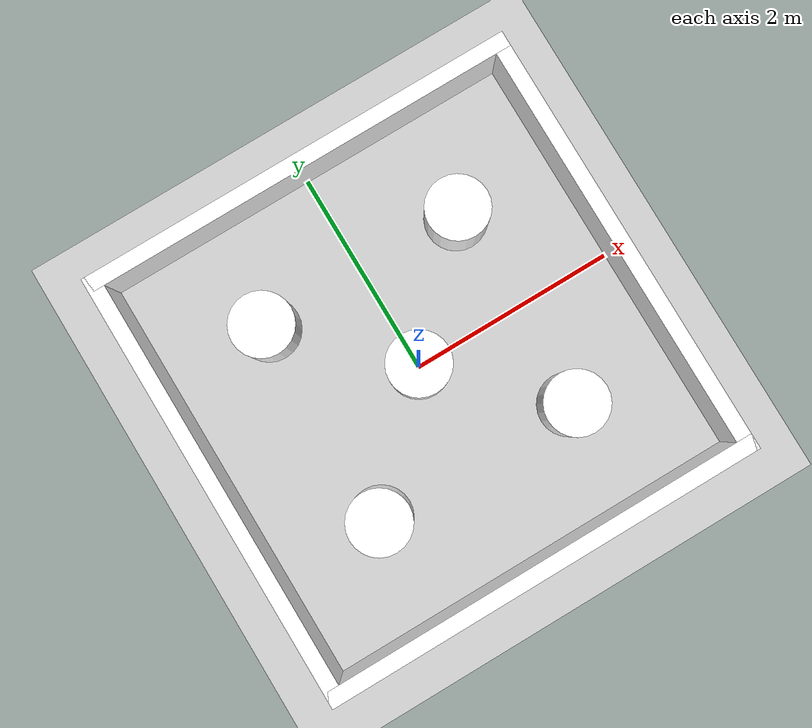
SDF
<sdf version="1.7">
 <world name="default">
  <light name="sun" type="directional">
   <pose>0 0 10 0 -0 0</pose>
   <diffuse>0.8 0.8 0.8 1</diffuse>
   <specular>0.2 0.2 0.2 1</specular>
   <attenuation>
    <range>1000</range>
    <constant>0.9</constant>
    <linear>0.01</linear>
    <quadratic>0.001</quadratic>
   </attenuation>
   <direction>-0.5 0.1 -0.9</direction>
   <spot><inner_angle>0</inner_angle><outer_angle>0</outer_angle><falloff>0</falloff></spot>
  </light>
  <model name="ground_plane">
   <static>1</static>
   <link name="link">
    <collision name="collision">
     <geometry><plane><normal>0 0 1</normal><size>100 100</size></plane></geometry>
     <surface><friction><ode><mu>100</mu><mu2>50</mu2></ode></friction></surface>
    </collision>
    <visual name="visual">
     <cast_shadows>0</cast_shadows>
     <geometry><plane><normal>0 0 1</normal><size>100 100</size></plane></geometry>
     <material>
      <script><uri>file://media/materials/scripts/gazebo.material</uri><name>Gazebo/Grey</name></script>
     </material>
    </visual>
   </link>
  </model>
  <gravity>0 0 -9.8</gravity>
  <magnetic_field>6e-06 2.3e-05 -4.2e-05</magnetic_field>
  <atmosphere type="adiabatic"/>
  <physics type="ode">
   <max_step_size>0.001</max_step_size>
   <real_time_factor>1</real_time_factor>
   <real_time_update_rate>1000</real_time_update_rate>
  </physics>
  <scene><ambient>0.4 0.4 0.4 1</ambient><background>0.7 0.7 0.7 1</background><shadows>1</shadows></scene>
  <spherical_coordinates>
   <surface_model>EARTH_WGS84</surface_model>
   <latitude_deg>0</latitude_deg>
   <longitude_deg>0</longitude_deg>
   <elevation>0</elevation>
   <heading_deg>0</heading_deg>
  </spherical_coordinates>
  <model name="box_walls">
   <link name="fixed"/>
   <link name="Wall_0">
    <collision name="Wall_0_Collision">
     <geometry><box><size>4.3 0.15 0.5</size></box></geometry>
     <pose>0 0 0.25 0 -0 0</pose>
    </collision>
    <visual name="Wall_0_Visual">
     <pose>0 0 0.25 0 -0 0</pose>
     <geometry><box><size>4.3 0.15 0.5</size></box></geometry>
     <material><ambient>1 1 1 1</ambient></material>
    </visual>
    <pose>0 2.075 0 0 -0 0</pose>
   </link>
   <link name="Wall_2">
    <collision name="Wall_2_Collision">
     <geometry><box><size>4.3 0.15 0.5</size></box></geometry>
     <pose>0 0 0.25 0 -0 0</pose>
    </collision>
    <visual name="Wall_2_Visual">
     <pose>0 0 0.25 0 -0 0</pose>
     <geometry><box><size>4.3 0.15 0.5</size></box></geometry>
     <material><ambient>1 1 1 1</ambient></material>
    </visual>
    <pose>-2.075 0 0 0 0 -1.5708</pose>
   </link>
   <link name="Wall_3">
    <collision name="Wall_3_Collision">
     <geometry><box><size>4.3 0.15 0.5</size></box></geometry>
     <pose>0 0 0.25 0 -0 0</pose>
    </collision>
    <visual name="Wall_3_Visual">
     <pose>0 0 0.25 0 -0 0</pose>
     <geometry><box><size>4.3 0.15 0.5</size></box></geometry>
     <material><ambient>1 1 1 1</ambient></material>
    </visual>
    <pose>0 -2.075 0 0 -0 0</pose>
   </link>
   <link name="Wall_4">
    <collision name="Wall_4_Collision">
     <geometry><box><size>4.3 0.15 0.5</size></box></geometry>
     <pose>0 0 0.25 0 -0 0</pose>
    </collision>
    <visual name="Wall_4_Visual">
     <pose>0 0 0.25 0 -0 0</pose>
     <geometry><box><size>4.3 0.15 0.5</size></box></geometry>
     <material><ambient>1 1 1 1</ambient></material>
    </visual>
    <pose>2.075 0 0 0 -0 1.5708</pose>
   </link>
   <static>1</static>
  </model>
  <model name="cylinder">
   <link name="link">
    <collision name="collision">
     <pose>0 0 0.25 0 -0 0</pose>
     <geometry><cylinder><radius>0.3</radius><length>0.5</length></cylinder></geometry>
    </collision>
    <visual name="visual">
     <pose>0 0 0.25 0 -0 0</pose>
     <geometry><cylinder><radius>0.3</radius><length>0.5</length></cylinder></geometry>
     <material><ambient>1 1 1 1</ambient></material>
    </visual>
    <inertial>
     <inertia><ixx>1</ixx><ixy>0</ixy><ixz>0</ixz><iyy>1</iyy><iyz>0</iyz><izz>1</izz></inertia>
     <mass>1</mass>
    </inertial>
   </link>
   <pose>-1 1 -0 0 -0 0</pose>
  </model>
  <model name="cylinder_0">
   <link name="link">
    <collision name="collision">
     <pose>0 0 0.25 0 -0 0</pose>
     <geometry><cylinder><radius>0.3</radius><length>0.5</length></cylinder></geometry>
    </collision>
    <visual name="visual">
     <pose>0 0 0.25 0 -0 0</pose>
     <geometry><cylinder><radius>0.3</radius><length>0.5</length></cylinder></geometry>
     <material><ambient>1 1 1 1</ambient></material>
    </visual>
    <inertial>
     <inertia><ixx>1</ixx><ixy>0</ixy><ixz>0</ixz><iyy>1</iyy><iyz>0</iyz><izz>1</izz></inertia>
     <mass>1</mass>
    </inertial>
   </link>
  </model>
  <model name="cylinder_1">
   <link name="link">
    <collision name="collision">
     <pose>0 0 0.25 0 -0 0</pose>
     <geometry><cylinder><radius>0.3</radius><length>0.5</length></cylinder></geometry>
    </collision>
    <visual name="visual">
     <pose>0 0 0.25 0 -0 0</pose>
     <geometry><cylinder><radius>0.3</radius><length>0.5</length></cylinder></geometry>
     <material><ambient>1 1 1 1</ambient></material>
    </visual>
    <inertial>
     <inertia><ixx>1</ixx><ixy>0</ixy><ixz>0</ixz><iyy>1</iyy><iyz>0</iyz><izz>1</izz></inertia>
     <mass>1</mass>
    </inertial>
   </link>
   <pose>1 1 -0 0 -0 0</pose>
  </model>
  <model name="cylinder_2">
   <link name="link">
    <collision name="collision">
     <pose>0 0 0.25 0 -0 0</pose>
     <geometry><cylinder><radius>0.3</radius><length>0.5</length></cylinder></geometry>
    </collision>
    <visual name="visual">
     <pose>0 0 0.25 0 -0 0</pose>
     <geometry><cylinder><radius>0.3</radius><length>0.5</length></cylinder></geometry>
     <material><ambient>1 1 1 1</ambient></material>
    </visual>
    <inertial>
     <inertia><ixx>1</ixx><ixy>0</ixy><ixz>0</ixz><iyy>1</iyy><iyz>0</iyz><izz>1</izz></inertia>
     <mass>1</mass>
    </inertial>
   </link>
   <pose>-1 -1 -0 0 -0 0</pose>
  </model>
  <model name="cylinder_3">
   <link name="link">
    <collision name="collision">
     <pose>0 0 0.25 0 -0 0</pose>
     <geometry><cylinder><radius>0.3</radius><length>0.5</length></cylinder></geometry>
    </collision>
    <visual name="visual">
     <pose>0 0 0.25 0 -0 0</pose>
     <geometry><cylinder><radius>0.3</radius><length>0.5</length></cylinder></geometry>
     <material><ambient>1 1 1 1</ambient></material>
    </visual>
    <inertial>
     <inertia><ixx>1</ixx><ixy>0</ixy><ixz>0</ixz><iyy>1</iyy><iyz>0</iyz><izz>1</izz></inertia>
     <mass>1</mass>
    </inertial>
   </link>
   <pose>1 -1 -0 0 -0 0</pose>
  </model>
 </world>
</sdf>
